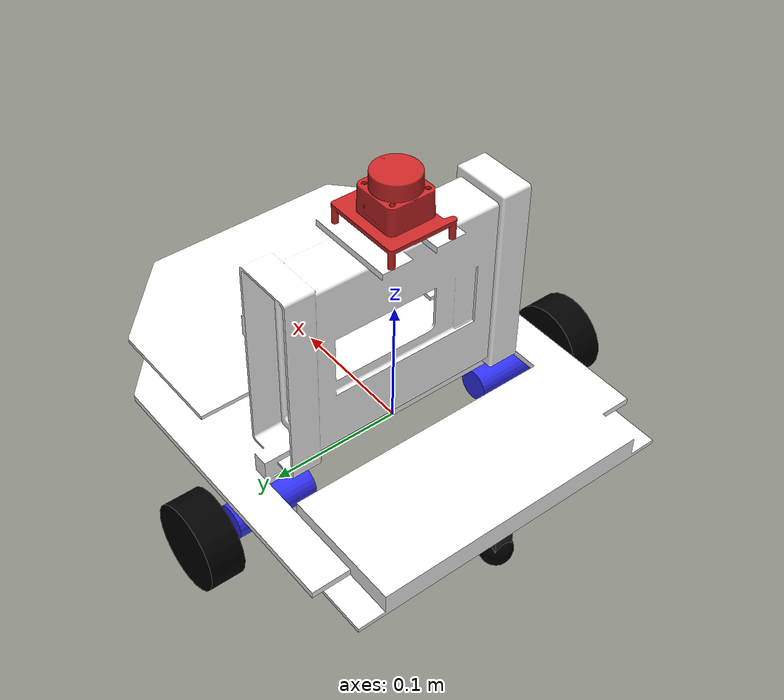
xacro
<?xml version="1.0" encoding="UTF-8"?>
<robot xmlns:xacro="http://www.ros.org/wiki/xacro" name="humibot">

   <xacro:arg name="use_ros2_control" default="True"/>
   <xacro:arg name="use_sim_mode" default="False"/>

   <xacro:include filename="utils/colors.xacro"/>
   <xacro:include filename="utils/inertial_macros.xacro"/>
   <xacro:include filename="utils/properties.xacro"/>

   <xacro:include filename="robot_core.xacro"/>

   <xacro:include filename="sensors/lidar.xacro"/>

   <xacro:if value="$(arg use_ros2_control)">
      <xacro:include filename="ros2_control.xacro"/>
   </xacro:if>
   <xacro:unless value="$(arg use_ros2_control)">
      <xacro:include filename="gazebo_control.xacro"/>
   </xacro:unless>

</robot>

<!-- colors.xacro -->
<robot xmlns:xacro="http://www.ros.org/wiki/xacro">

   <material name="white">
      <color rgba="1 1 1 1"/>
   </material>

   <material name="black">
      <color rgba="0 0 0 1"/>
   </material>

   <material name="blue">
      <color rgba="0.2 0.2 1 1"/>
   </material>

   <material name="orange">
      <color rgba="1 0.3 0.1 1"/>
   </material>

</robot>

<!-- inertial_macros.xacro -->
<robot xmlns:xacro="http://www.ros.org/wiki/xacro">

   <!-- Specify some standard inertial calculations https://en.wikipedia.org/wiki/List_of_moments_of_inertia -->
    <!-- These make use of xacro's mathematical functionality -->

    <xacro:macro name="inertial_sphere" params="mass radius *origin">
        <inertial>
            <xacro:insert_block name="origin"/>
            <mass value="${mass}" />
            <inertia ixx="${(2/5) * mass * (radius*radius)}" ixy="0.0" ixz="0.0"
                    iyy="${(2/5) * mass * (radius*radius)}" iyz="0.0"
                    izz="${(2/5) * mass * (radius*radius)}" />
        </inertial>
    </xacro:macro>

    <xacro:macro name="inertial_box" params="mass x y z *origin">
        <inertial>
            <xacro:insert_block name="origin"/>
            <mass value="${mass}" />
            <inertia ixx="${(1/12) * mass * (y*y+z*z)}" ixy="0.0" ixz="0.0"
                    iyy="${(1/12) * mass * (x*x+z*z)}" iyz="0.0"
                    izz="${(1/12) * mass * (x*x+y*y)}" />
        </inertial>
    </xacro:macro>

    <xacro:macro name="inertial_cylinder" params="mass length radius *origin">
        <inertial>
            <xacro:insert_block name="origin"/>
            <mass value="${mass}" />
            <inertia ixx="${(1/12) * mass * (3*radius*radius + length*length)}" ixy="0.0" ixz="0.0"
                    iyy="${(1/12) * mass * (3*radius*radius + length*length)}" iyz="0.0"
                    izz="${(1/2) * mass * (radius*radius)}" />
        </inertial>
    </xacro:macro>

</robot>

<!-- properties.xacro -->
<robot xmlns:xacro="http://www.ros.org/wiki/xacro">

   <xacro:property name="base_width" value="0.280"/>
   <xacro:property name="base_length" value="0.288"/>
   <xacro:property name="base_height" value="0.005"/>
   <xacro:property name="base_mass" value="1.862"/>
   <xacro:property name="base_link_xoff" value="0.095"/>

   <xacro:property name="wheel_diameter" value="0.065"/>
   <xacro:property name="wheel_radius" value="${wheel_diameter/2}"/>
   <xacro:property name="wheel_width" value="0.026"/>
   <xacro:property name="wheel_mass" value="0.048"/>

   <xacro:property name="dc_motor_radius" value="0.0125"/>
   <xacro:property name="dc_motor_length" value="0.063"/>

   <xacro:property name="wheel_ygap" value="0.01"/>
   <xacro:property name="wheel_zoff" value="${dc_motor_radius + 0.005}"/>
   <xacro:property name="wheel_xoff" value="0.12"/>

   <xacro:property name="caster_diameter" value="0.025"/>
   <xacro:property name="caster_radius" value="${caster_diameter/2}"/>
   <xacro:property name="caster_xoff" value="0.14"/>
   <xacro:property name="caster_mass" value="0.048"/>

</robot>

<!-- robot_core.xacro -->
<robot xmlns:xacro="http://www.ros.org/wiki/xacro">

   <!-- BASE FOOTPRINT -->
   <link name="base_footprint">
   </link>

   <!-- BASE LINK -->
   <joint name="base_joint" type="fixed">
      <origin xyz="0 0 -${wheel_zoff + wheel_radius}" rpy="0 0 0"/>
      <parent link="base_link"/>
      <child link="base_footprint"/>
   </joint>

   <link name="base_link">
   </link>

   <!-- CHASSIS -->
   <joint name="chassis_joint" type="fixed">
      <origin xyz="-${base_link_xoff + 0.0365} 0 0" rpy="0 0 0"/>
      <parent link="base_link"/>
      <child link="chassis_link"/>
   </joint>

   <link name="chassis_link">
      <visual>
         <origin xyz="${(base_length/2) + 0.0365} 0.0 ${base_height/2}" rpy="0.0 0.0 ${-(pi/2)}"/>
         <geometry>
            <mesh filename="package://humibot_description/meshes/chassis.stl" scale="0.001 0.001 0.001"/>
         </geometry>
         <material name="white"/>
      </visual>
      <collision>
         <origin xyz="${(base_length+0.0365)/2} 0.0 ${(base_height+0.165)/2}" rpy="0.0 0.0 0.0"/>
         <geometry>
            <box size="${base_length + 0.04} ${base_width} ${base_height+0.165}"/>
         </geometry>
      </collision>

      <visual name="left_dc_motor_visual">
         <origin xyz="${base_link_xoff + 0.0365} ${(base_width/2) - (0.063/2)} -${0.0125 + 0.005}" rpy="-${pi/2} 0 0"/>
         <geometry>
            <cylinder radius="0.0125" length="0.063"/>
         </geometry>
         <material name="blue"/>
      </visual>
      <collision name="left_dc_motor_collision">
         <origin xyz="${base_link_xoff + 0.0365} ${(base_width/2) - (0.063/2)} -${0.0125 + 0.005}" rpy="-${pi/2} 0 0"/>
         <geometry>
            <cylinder radius="0.0125" length="0.063"/>
         </geometry>
      </collision>

      <visual name="right_dc_motor_visual">
         <origin xyz="${base_link_xoff + 0.0365} -${(base_width/2) - (0.063/2)} -${0.0125 + 0.005}" rpy="-${pi/2} 0 0"/>
         <geometry>
            <cylinder radius="0.0125" length="0.063"/>
         </geometry>
         <material name="blue"/>
      </visual>
      <collision name="right_dc_motor_collision">
         <origin xyz="${base_link_xoff + 0.0365} -${(base_width/2) - (0.063/2)} -${0.0125 + 0.005}" rpy="-${pi/2} 0 0"/>
         <geometry>
            <cylinder radius="0.0125" length="0.063"/>
         </geometry>
      </collision>

      <xacro:inertial_box mass="${base_mass}" x="${base_length + 0.04}" y="${base_width}" z="${base_height+0.165}">
         <origin xyz="${base_link_xoff + 0.037} 0.0 ${base_height/2}" rpy="0.0 0.0 0.0"/>
      </xacro:inertial_box>
   </link>

   <!-- LEFT WHEEL -->
   <joint name="left_wheel_joint" type="continuous">
      <origin xyz="0 ${(base_width/2) + (wheel_width/2) + wheel_ygap} -${0.0125 + 0.005}" rpy="${-(pi/2)} 0 0"/>
      <parent link="base_link"/>
      <child link="left_wheel_link"/>
      <axis xyz="0 0 1"/>
   </joint>

   <link name="left_wheel_link">
      <visual>
         <geometry>
            <cylinder radius="${wheel_radius}" length="${wheel_width}"/>
         </geometry>
         <material name="black"/>
      </visual>

      <collision>
         <geometry>
            <sphere radius="${wheel_radius}"/>
         </geometry>
      </collision>

      <xacro:inertial_cylinder mass="${wheel_mass}" length="${wheel_width}" radius="${wheel_radius}">
         <origin xyz="0 0 0" rpy="0 0 0"/>
      </xacro:inertial_cylinder>
   </link>

   <!-- RIGHT WHEEL -->
   <joint name="right_wheel_joint" type="continuous">
      <origin xyz="0 -${(base_width/2) + (wheel_width/2) + wheel_ygap} -${0.0125 + 0.005}" rpy="${pi/2} 0 0"/>
      <parent link="base_link"/>
      <child link="right_wheel_link"/>
      <axis xyz="0 0 -1"/>
   </joint>

   <link name="right_wheel_link">
      <visual>
         <geometry>
            <cylinder radius="${wheel_radius}" length="${wheel_width}"/>
         </geometry>
         <material name="black"/>
      </visual>

      <collision>
         <geometry>
            <sphere radius="${wheel_radius}"/>
         </geometry>
      </collision>

      <xacro:inertial_cylinder mass="${wheel_mass}" length="${wheel_width}" radius="${wheel_radius}">
         <origin xyz="0 0 0" rpy="0 0 0"/>
      </xacro:inertial_cylinder>
   </link>

   <!-- CASTER WHEEL -->
   <joint name="front_caster_joint" type="fixed">
      <parent link="chassis_link"/>
      <child link="front_caster"/>
      <origin xyz="${base_length - 0.034} 0 ${-0.0125 - 0.005 + caster_radius - wheel_radius}" rpy="0 0 0"/>
   </joint>

   <link name="front_caster">
      <visual>
         <geometry>
            <sphere radius="${caster_radius}"/>
         </geometry>
         <material name="black"/>
      </visual>

      <collision>
         <geometry>
            <sphere radius="${caster_radius}"/>
         </geometry>
      </collision>

      <visual name="caster_wheel_holder_visual">
         <origin xyz="0.0 0.0 ${0.04/2}" rpy="0.0 0.0 0.0"/>
         <geometry>
            <box size="0.015 0.015 0.04"/>
         </geometry>
      </visual>

      <xacro:inertial_sphere mass="${caster_mass}" radius="${caster_radius}">
         <origin xyz="0 0 0" rpy="0 0 0"/>
      </xacro:inertial_sphere>
   </link>

   <joint name="back_caster_joint" type="fixed">
      <parent link="chassis_link"/>
      <child link="back_caster"/>
      <origin xyz="${(0.015/2) + 0.01} 0 ${-0.0125 - 0.005 + caster_radius - wheel_radius}" rpy="0 0 0"/>
   </joint>

   <link name="back_caster">
      <visual>
         <geometry>
            <sphere radius="${caster_radius}"/>
         </geometry>
         <material name="black"/>
      </visual>

      <collision>
         <geometry>
            <sphere radius="${caster_radius}"/>
         </geometry>
      </collision>

      <visual name="caster_wheel_holder_visual">
         <origin xyz="0.0 0.0 ${0.04/2}" rpy="0.0 0.0 0.0"/>
         <geometry>
            <box size="0.015 0.015 0.04"/>
         </geometry>
      </visual>

      <xacro:inertial_sphere mass="${caster_mass}" radius="${caster_radius}">
         <origin xyz="0 0 0" rpy="0 0 0"/>
      </xacro:inertial_sphere>
   </link>

   <!-- GAZEBO -->
   <gazebo reference="chassis_link">
      <material>Gazebo/White</material>
   </gazebo>

   <gazebo reference="left_wheel_link">
      <material>Gazebo/Black</material>
   </gazebo>

   <gazebo reference="right_wheel_link">
      <material>Gazebo/Black</material>
   </gazebo>

   <gazebo reference="front_caster">
      <material>Gazebo/Black</material>
      <mu1 value="0.001"/>
      <mu2 value="0.001"/>
   </gazebo>

   <gazebo reference="back_caster">
      <material>Gazebo/Black</material>
      <mu1 value="0.001"/>
      <mu2 value="0.001"/>
   </gazebo>

</robot>

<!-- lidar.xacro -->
<robot xmlns:xacro="http://www.ros.org/wiki/xacro">

   <joint name="lidar_joint" type="fixed">
      <origin xyz="0.0 0.0 ${base_height+0.215-0.0105}" rpy="0.0 0.0 0.0"/>
      <parent link="base_link"/>
      <child link="lidar_link"/>
   </joint>

   <link name="lidar_link">
      <visual>
         <origin xyz="-0.057 -0.031 -0.052" rpy="${pi/2} 0.0 ${pi/2}"/>
         <geometry>
               <mesh filename="package://humibot_description/meshes/ld06.stl" scale="0.001 0.001 0.001"/>
         </geometry>
      </visual>
      <collision>
         <origin xyz="0 0 0" rpy="0 0 0"/>
         <geometry>
            <cylinder radius="0.0175" length="0.015"/>
         </geometry>
      </collision>

      <xacro:inertial_cylinder mass="0.109" length="0.015" radius="0.0175">
         <origin xyz="0 0 0" rpy="0 0 0"/>
      </xacro:inertial_cylinder>
   </link>

   <gazebo reference="lidar_link">
      <material>Gazebo/Red</material>
      <sensor name="lidar" type="ray">
         <always_on>true</always_on>
         <visualize>false</visualize>
         <update_rate>10</update_rate>
         <ray>
            <scan>
               <horizontal>
                  <samples>360</samples>
                  <resolution>1.000000</resolution>
                  <min_angle>0.000000</min_angle>
                  <max_angle>6.280000</max_angle>
               </horizontal>
            </scan>
            <range>
               <min>0.02</min>
               <max>12</max>
               <resolution>0.015000</resolution>
            </range>
            <noise>
               <type>gaussian</type>
               <mean>0.0</mean>
               <stddev>0.01</stddev>
             </noise>
         </ray>
         <plugin name="laser_controller" filename="libgazebo_ros_ray_sensor.so">
            <ros>
              <remapping>~/out:=scan</remapping>
            </ros>
            <output_type>sensor_msgs/LaserScan</output_type>
            <frame_name>lidar_link</frame_name>
          </plugin>
      </sensor>
   </gazebo>
</robot>
